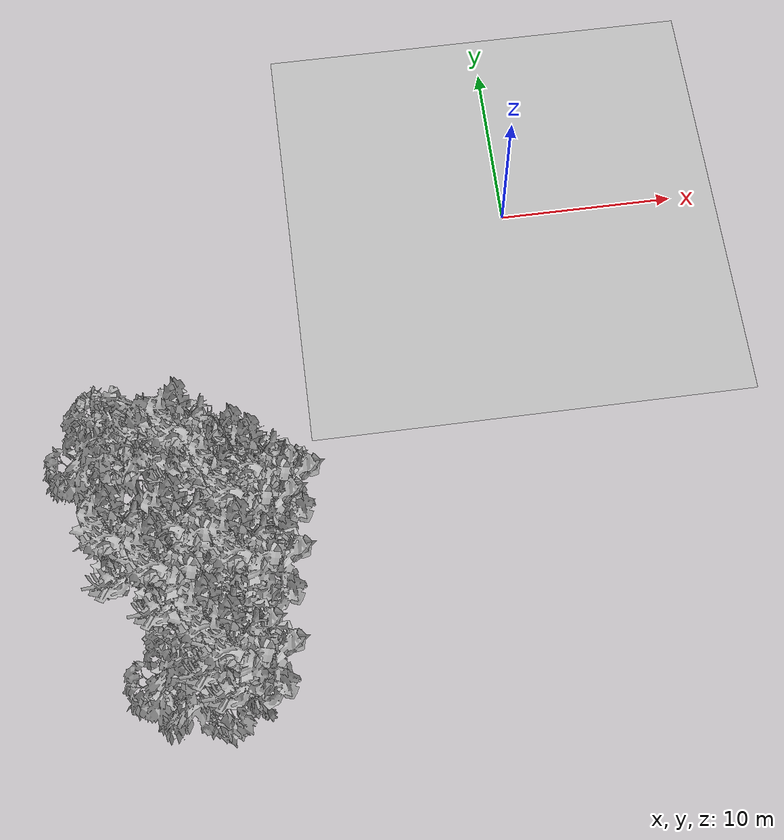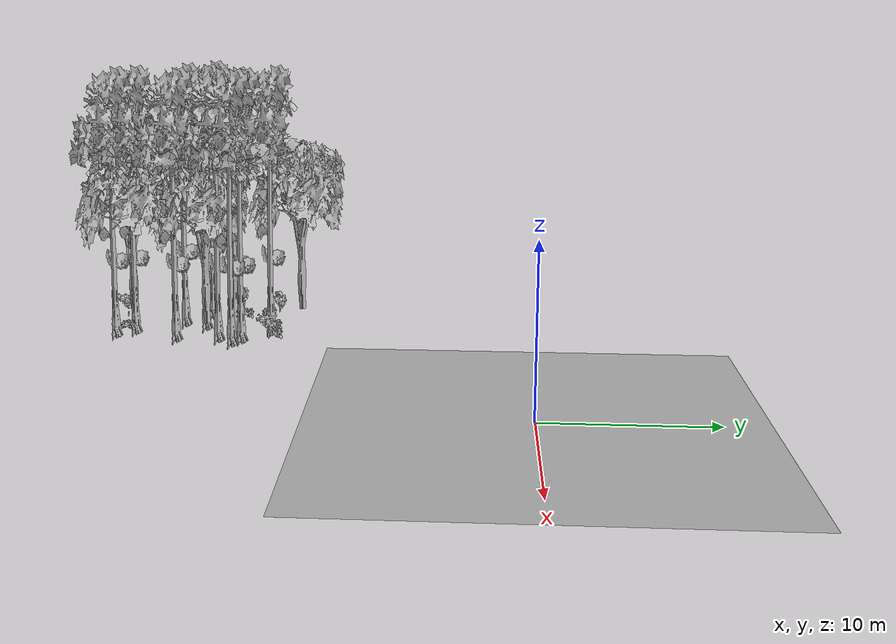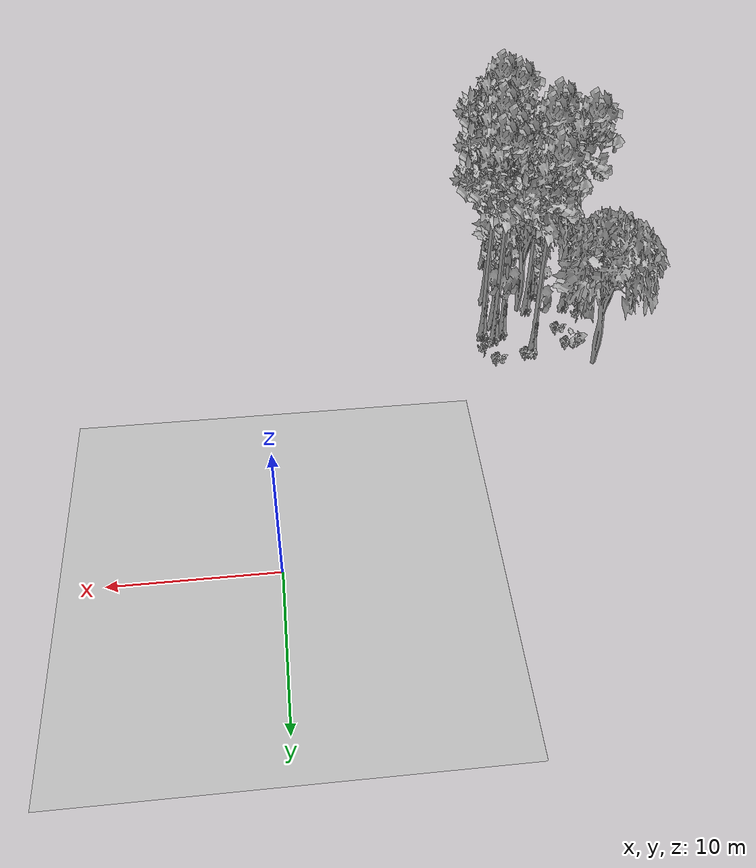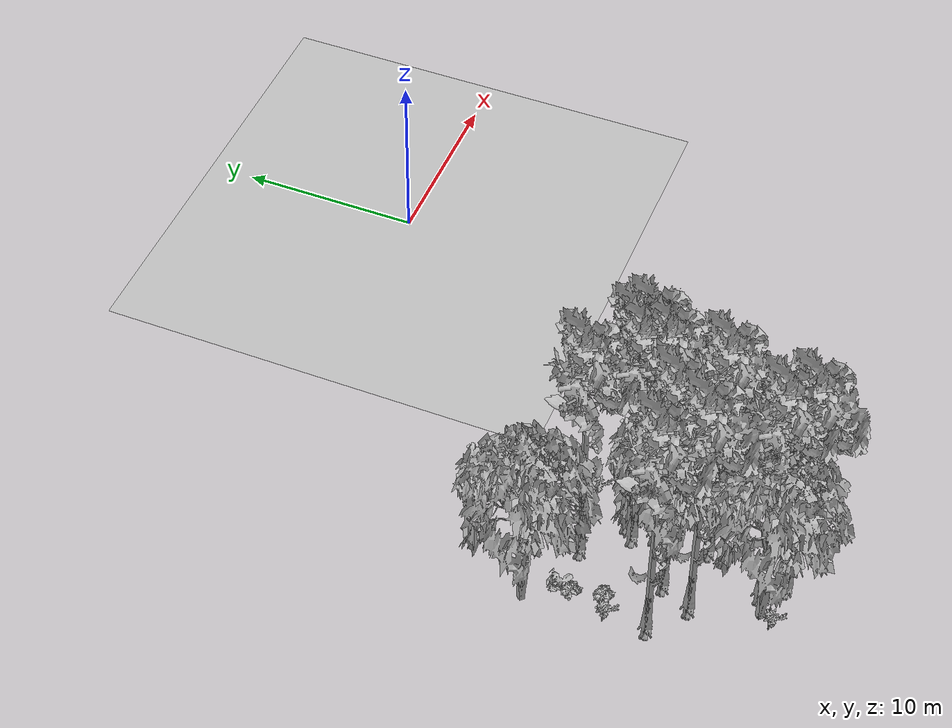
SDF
<sdf version="1.7">
 <world name="default">
  <model name="ground_plane">
   <static>1</static>
   <link name="link">
    <collision name="collision">
     <pose>-50 0 0 0 -0 0</pose>
     <geometry><plane><normal>0 0 1</normal><size>80 80</size></plane></geometry>
     <surface><contact><ode><min_depth>0.01</min_depth><max_vel>0</max_vel></ode></contact></surface>
    </collision>
    <visual name="grass">
     <cast_shadows>0</cast_shadows>
     <geometry>
      <mesh>
       <scale>0.46714285714285714 0.46714285714285714 0.1</scale>
       <uri>file://grass_plane/meshes/grass_plane.dae</uri>
      </mesh>
     </geometry>
    </visual>
   </link>
  </model>
  <model name="Tree 15">
   <static>1</static>
   <pose>-14.854985802716378 -19.197979254505917 0 1.57079 -0 0</pose>
   <link name="link">
    <collision name="collision">
     <geometry><mesh><scale>3.5 5 3.5</scale><uri>model://tree_9/meshes/tree_9.obj</uri></mesh></geometry>
    </collision>
    <visual name="visual">
     <geometry><mesh><scale>3.5 5 3.5</scale><uri>model://tree_9/meshes/tree_9.obj</uri></mesh></geometry>
    </visual>
   </link>
  </model>
  <model name="Tree 232">
   <static>1</static>
   <pose>-21.98460370387003 -15.42927073702468 0 1.57079 -0 0</pose>
   <link name="link">
    <collision name="collision">
     <geometry><mesh><scale>3.5 5 3.5</scale><uri>model://tree_2/meshes/tree_2.obj</uri></mesh></geometry>
    </collision>
    <visual name="visual">
     <geometry><mesh><scale>3.5 5 3.5</scale><uri>model://tree_2/meshes/tree_2.obj</uri></mesh></geometry>
    </visual>
   </link>
  </model>
  <model name="Tree 241">
   <static>1</static>
   <pose>-16.338799300932752 -27.322171138712406 0 1.57079 -0 0</pose>
   <link name="link">
    <collision name="collision">
     <geometry><mesh><scale>3.5 5 3.5</scale><uri>model://tree_9/meshes/tree_9.obj</uri></mesh></geometry>
    </collision>
    <visual name="visual">
     <geometry><mesh><scale>3.5 5 3.5</scale><uri>model://tree_9/meshes/tree_9.obj</uri></mesh></geometry>
    </visual>
   </link>
  </model>
  <model name="Tree 261">
   <static>1</static>
   <pose>-19.323854167119812 -23.228402323158583 0 1.57079 -0 0</pose>
   <link name="link">
    <collision name="collision">
     <geometry><mesh><scale>3.5 5 3.5</scale><uri>model://tree_9/meshes/tree_9.obj</uri></mesh></geometry>
    </collision>
    <visual name="visual">
     <geometry><mesh><scale>3.5 5 3.5</scale><uri>model://tree_9/meshes/tree_9.obj</uri></mesh></geometry>
    </visual>
   </link>
  </model>
  <model name="Tree 262">
   <static>1</static>
   <pose>-15.635805075148667 -23.066066406534247 0 1.57079 -0 0</pose>
   <link name="link">
    <collision name="collision">
     <geometry><mesh><scale>3.5 5 3.5</scale><uri>model://tree_9/meshes/tree_9.obj</uri></mesh></geometry>
    </collision>
    <visual name="visual">
     <geometry><mesh><scale>3.5 5 3.5</scale><uri>model://tree_9/meshes/tree_9.obj</uri></mesh></geometry>
    </visual>
   </link>
  </model>
  <model name="Tree 266">
   <static>1</static>
   <pose>-15.599191081775032 -18.67198847880511 0 1.57079 -0 0</pose>
   <link name="link">
    <collision name="collision">
     <geometry><mesh><scale>3.5 5 3.5</scale><uri>model://tree_9/meshes/tree_9.obj</uri></mesh></geometry>
    </collision>
    <visual name="visual">
     <geometry><mesh><scale>3.5 5 3.5</scale><uri>model://tree_9/meshes/tree_9.obj</uri></mesh></geometry>
    </visual>
   </link>
  </model>
  <model name="Tree 274">
   <static>1</static>
   <pose>-18.62088398369326 -26.616674550115633 0 1.57079 -0 0</pose>
   <link name="link">
    <collision name="collision">
     <geometry><mesh><scale>3.5 5 3.5</scale><uri>model://tree_2/meshes/tree_2.obj</uri></mesh></geometry>
    </collision>
    <visual name="visual">
     <geometry><mesh><scale>3.5 5 3.5</scale><uri>model://tree_2/meshes/tree_2.obj</uri></mesh></geometry>
    </visual>
   </link>
  </model>
  <model name="Tree 324">
   <static>1</static>
   <pose>-15.75626992225202 -20.24848817603326 0 1.57079 -0 0</pose>
   <link name="link">
    <collision name="collision">
     <geometry><mesh><scale>3.5 5 3.5</scale><uri>model://tree_9/meshes/tree_9.obj</uri></mesh></geometry>
    </collision>
    <visual name="visual">
     <geometry><mesh><scale>3.5 5 3.5</scale><uri>model://tree_9/meshes/tree_9.obj</uri></mesh></geometry>
    </visual>
   </link>
  </model>
  <model name="Tree 342">
   <static>1</static>
   <pose>-18.481253143852914 -21.61130986318107 0 1.57079 -0 0</pose>
   <link name="link">
    <collision name="collision">
     <geometry><mesh><scale>3.5 5 3.5</scale><uri>model://tree_9/meshes/tree_9.obj</uri></mesh></geometry>
    </collision>
    <visual name="visual">
     <geometry><mesh><scale>3.5 5 3.5</scale><uri>model://tree_9/meshes/tree_9.obj</uri></mesh></geometry>
    </visual>
   </link>
  </model>
  <model name="Tree 418">
   <static>1</static>
   <pose>-21.256007566019736 -21.698181646953767 0 1.57079 -0 0</pose>
   <link name="link">
    <collision name="collision">
     <geometry><mesh><scale>3.5 5 3.5</scale><uri>model://tree_9/meshes/tree_9.obj</uri></mesh></geometry>
    </collision>
    <visual name="visual">
     <geometry><mesh><scale>3.5 5 3.5</scale><uri>model://tree_9/meshes/tree_9.obj</uri></mesh></geometry>
    </visual>
   </link>
  </model>
  <model name="Tree 528">
   <static>1</static>
   <pose>-17.2451784605208 -26.210637488981156 0 1.57079 -0 0</pose>
   <link name="link">
    <collision name="collision">
     <geometry><mesh><scale>3.5 5 3.5</scale><uri>model://tree_9/meshes/tree_9.obj</uri></mesh></geometry>
    </collision>
    <visual name="visual">
     <geometry><mesh><scale>3.5 5 3.5</scale><uri>model://tree_9/meshes/tree_9.obj</uri></mesh></geometry>
    </visual>
   </link>
  </model>
  <model name="Tree 571">
   <static>1</static>
   <pose>-17.86325194729981 -21.435584144603457 0 1.57079 -0 0</pose>
   <link name="link">
    <collision name="collision">
     <geometry><mesh><scale>3.5 5 3.5</scale><uri>model://tree_2/meshes/tree_2.obj</uri></mesh></geometry>
    </collision>
    <visual name="visual">
     <geometry><mesh><scale>3.5 5 3.5</scale><uri>model://tree_2/meshes/tree_2.obj</uri></mesh></geometry>
    </visual>
   </link>
  </model>
  <model name="Tree 575">
   <static>1</static>
   <pose>-16.252206100997984 -19.21194331591166 0 1.57079 -0 0</pose>
   <link name="link">
    <collision name="collision">
     <geometry><mesh><scale>3.5 5 3.5</scale><uri>model://tree_9/meshes/tree_9.obj</uri></mesh></geometry>
    </collision>
    <visual name="visual">
     <geometry><mesh><scale>3.5 5 3.5</scale><uri>model://tree_9/meshes/tree_9.obj</uri></mesh></geometry>
    </visual>
   </link>
  </model>
  <model name="Tree 581">
   <static>1</static>
   <pose>-17.989702865128766 -17.05861066031928 0 1.57079 -0 0</pose>
   <link name="link">
    <collision name="collision">
     <geometry><mesh><scale>3.5 5 3.5</scale><uri>model://tree_9/meshes/tree_9.obj</uri></mesh></geometry>
    </collision>
    <visual name="visual">
     <geometry><mesh><scale>3.5 5 3.5</scale><uri>model://tree_9/meshes/tree_9.obj</uri></mesh></geometry>
    </visual>
   </link>
  </model>
  <model name="Bush 106">
   <static>1</static>
   <pose>-20.262851434248255 -19.146643244658446 0 1.57079 -0 0</pose>
   <link name="link">
    <collision name="collision">
     <geometry><mesh><scale>2 2 2</scale><uri>model://bush_2/meshes/bush_2.obj</uri></mesh></geometry>
     <surface><contact><collide_without_contact>false</collide_without_contact></contact></surface>
    </collision>
    <visual name="visual">
     <geometry><mesh><scale>2 2 2</scale><uri>model://bush_2/meshes/bush_2.obj</uri></mesh></geometry>
    </visual>
   </link>
  </model>
  <model name="Bush 164">
   <static>1</static>
   <pose>-21.684338888015702 -19.563753214977577 0 1.57079 -0 0</pose>
   <link name="link">
    <collision name="collision">
     <geometry><mesh><scale>2 2 2</scale><uri>model://bush_5/meshes/bush_5.obj</uri></mesh></geometry>
     <surface><contact><collide_without_contact>false</collide_without_contact></contact></surface>
    </collision>
    <visual name="visual">
     <geometry><mesh><scale>2 2 2</scale><uri>model://bush_5/meshes/bush_5.obj</uri></mesh></geometry>
    </visual>
   </link>
  </model>
  <model name="Bush 299">
   <static>1</static>
   <pose>-20.86961255695995 -16.863951543140043 0 1.57079 -0 0</pose>
   <link name="link">
    <collision name="collision">
     <geometry><mesh><scale>2 2 2</scale><uri>model://bush_0/meshes/bush_0.obj</uri></mesh></geometry>
     <surface><contact><collide_without_contact>false</collide_without_contact></contact></surface>
    </collision>
    <visual name="visual">
     <geometry><mesh><scale>2 2 2</scale><uri>model://bush_0/meshes/bush_0.obj</uri></mesh></geometry>
    </visual>
   </link>
  </model>
  <model name="Bush 374">
   <static>1</static>
   <pose>-16.870120835552058 -26.64692589884617 0 1.57079 -0 0</pose>
   <link name="link">
    <collision name="collision">
     <geometry><mesh><scale>2 2 2</scale><uri>model://bush_2/meshes/bush_2.obj</uri></mesh></geometry>
     <surface><contact><collide_without_contact>false</collide_without_contact></contact></surface>
    </collision>
    <visual name="visual">
     <geometry><mesh><scale>2 2 2</scale><uri>model://bush_2/meshes/bush_2.obj</uri></mesh></geometry>
    </visual>
   </link>
  </model>
  <model name="Bush 401">
   <static>1</static>
   <pose>-17.5955894385201 -16.76765441903737 0 1.57079 -0 0</pose>
   <link name="link">
    <collision name="collision">
     <geometry><mesh><scale>2 2 2</scale><uri>model://bush_2/meshes/bush_2.obj</uri></mesh></geometry>
     <surface><contact><collide_without_contact>false</collide_without_contact></contact></surface>
    </collision>
    <visual name="visual">
     <geometry><mesh><scale>2 2 2</scale><uri>model://bush_2/meshes/bush_2.obj</uri></mesh></geometry>
    </visual>
   </link>
  </model>
  <model name="Bush 491">
   <static>1</static>
   <pose>-19.08311508207423 -27.20760520909499 0 1.57079 -0 0</pose>
   <link name="link">
    <collision name="collision">
     <geometry><mesh><scale>2 2 2</scale><uri>model://bush_5/meshes/bush_5.obj</uri></mesh></geometry>
     <surface><contact><collide_without_contact>false</collide_without_contact></contact></surface>
    </collision>
    <visual name="visual">
     <geometry><mesh><scale>2 2 2</scale><uri>model://bush_5/meshes/bush_5.obj</uri></mesh></geometry>
    </visual>
   </link>
  </model>
  <model name="Bush 525">
   <static>1</static>
   <pose>-14.534037642339939 -16.669574225417094 0 1.57079 -0 0</pose>
   <link name="link">
    <collision name="collision">
     <geometry><mesh><scale>2 2 2</scale><uri>model://bush_5/meshes/bush_5.obj</uri></mesh></geometry>
     <surface><contact><collide_without_contact>false</collide_without_contact></contact></surface>
    </collision>
    <visual name="visual">
     <geometry><mesh><scale>2 2 2</scale><uri>model://bush_5/meshes/bush_5.obj</uri></mesh></geometry>
    </visual>
   </link>
  </model>
  <model name="Bush 555">
   <static>1</static>
   <pose>-20.61453412058128 -17.572232170905213 0 1.57079 -0 0</pose>
   <link name="link">
    <collision name="collision">
     <geometry><mesh><scale>2 2 2</scale><uri>model://bush_2/meshes/bush_2.obj</uri></mesh></geometry>
     <surface><contact><collide_without_contact>false</collide_without_contact></contact></surface>
    </collision>
    <visual name="visual">
     <geometry><mesh><scale>2 2 2</scale><uri>model://bush_2/meshes/bush_2.obj</uri></mesh></geometry>
    </visual>
   </link>
  </model>
  <model name="Bush 592">
   <static>1</static>
   <pose>-15.520409818984675 -16.416518947566416 0 1.57079 -0 0</pose>
   <link name="link">
    <collision name="collision">
     <geometry><mesh><scale>2 2 2</scale><uri>model://bush_2/meshes/bush_2.obj</uri></mesh></geometry>
     <surface><contact><collide_without_contact>false</collide_without_contact></contact></surface>
    </collision>
    <visual name="visual">
     <geometry><mesh><scale>2 2 2</scale><uri>model://bush_2/meshes/bush_2.obj</uri></mesh></geometry>
    </visual>
   </link>
  </model>
 </world>
</sdf>
